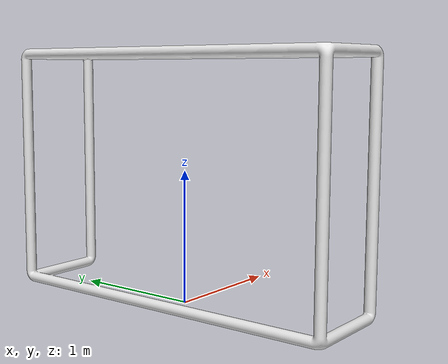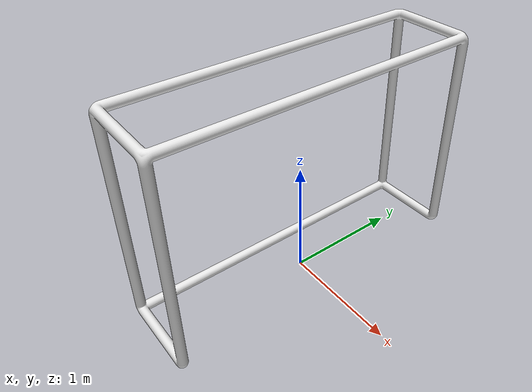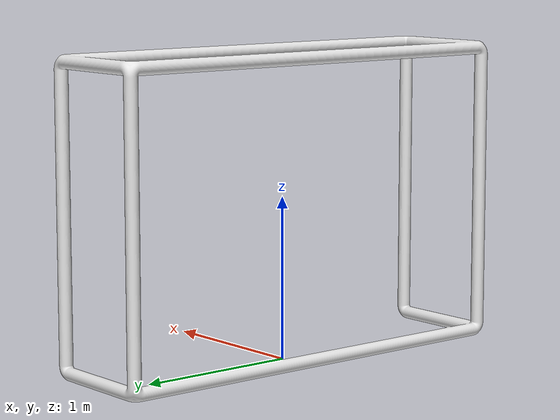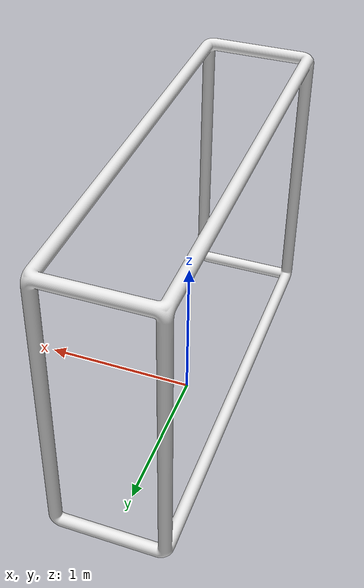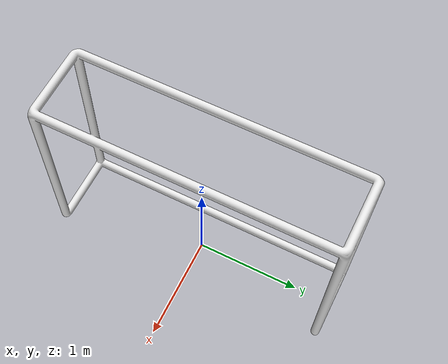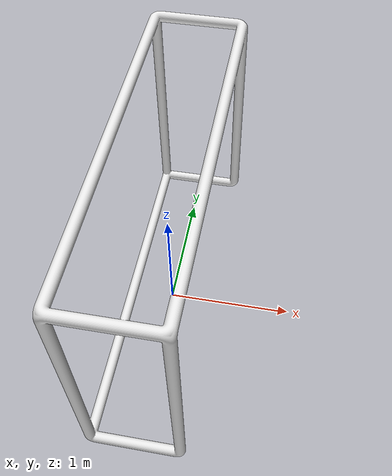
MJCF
<mujoco model="goalpost">
  <compiler angle="radian"/>

  <asset>
    <!-- Onshape-exported OBJ (MTL is auto-loaded) -->
    <mesh name="goalpost_mesh" file="goalpost.obj" scale="1 1 1"/>
    <material
      name="goalpost_mat"
      rgba="0.9 0.9 0.9 1"
      specular="0"
      shininess="0"/>
  </asset>

  <worldbody>
    <body
      name="goalpost"
      pos="0 0 0.04"
      euler="0 0 1.57079632679">

      <!-- ================= VISUAL (no collision) ================= -->
      <geom
        name="goalpost_visual"
        type="mesh"
        mesh="goalpost_mesh"
        material="goalpost_mat"
        pos="0 0 0.02"
        contype="0"
        conaffinity="0"/>

      <!-- ================= COLLISION ================= -->

      <!-- Palo sinistro -->
      <geom
        name="goal_left_post_col"
        type="cylinder"
        size="0.04 0.94"
        pos="-1.34 -0.34 0.92"
        group="3"
        rgba="1 0 0 0"/>

      <!-- Palo destro -->
      <geom
        name="goal_right_post_col"
        type="cylinder"
        size="0.04 0.94"
        pos="1.34 -0.34 0.92"
        group="3"
        rgba="0 1 0 0"/>

      <!-- Traversa -->
      <geom
        name="goal_crossbar_col"
        type="cylinder"
        size="0.04 1.3"
        pos="0 -0.34 1.82"
        euler="0 1.57079632679 0"
        group="3"
        rgba="0 0 1 0"/>

    </body>
  </worldbody>
</mujoco>
